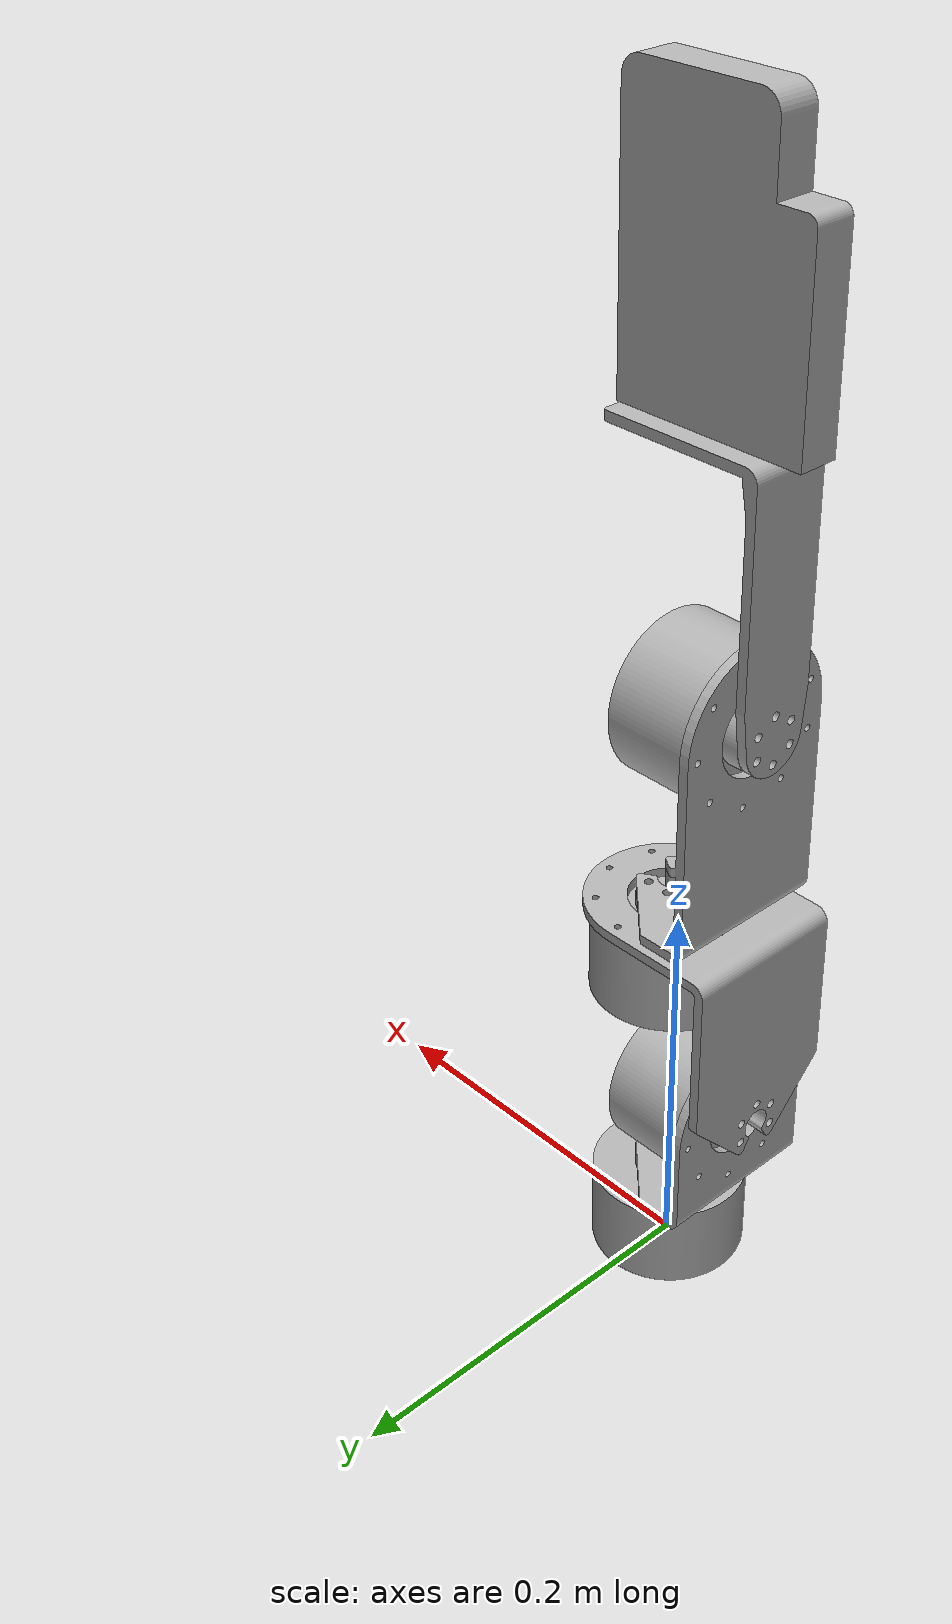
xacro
<?xml version="1.0"?>
<robot xmlns:xacro="http://www.ros.org/wiki/xacro" name="guardian">
    <xacro:arg name="initial_positions_file" default="initial_positions.yaml" />

    <!-- Import guardian urdf file -->
    <xacro:include filename="$(find guardian_urdf)/urdf/arm.urdf" />

    <!-- Import control_xacro -->
    <xacro:include filename="guardian.ros2_control.xacro" />

    <xacro:guardian_ros2_control name="FakeSystem" initial_positions_file="$(arg initial_positions_file)"/>

</robot>

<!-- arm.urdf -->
<robot name="guardian" xmlns:xacro="http://www.ros.org/wiki/xacro">
    <gazebo>
        <plugin filename="libgazebo_ros_control.so" name="ros_control">
        </plugin>
    </gazebo>

    <link name="base_link" />
    <joint name="shoulder_fixed_joint" type="fixed">
        <parent link="base_link" />
        <child link="shoulder_1_link" />
        <origin rpy="0.0 0.0 0.0" xyz="0.0 0.0 0.02275" />
        <axis xyz="0 0 1" />
    </joint>
    <link name="shoulder_1_link">
        <visual>
            <geometry>
                <mesh filename="package://guardian_urdf/visual/ROBSTRIDE02.stl" />
            </geometry>
            <material name="LightGrey">
                <color rgba="0.7 0.7 0.7 1.0" />
            </material>
        </visual>
        <collision>
            <geometry>
                <mesh filename="package://guardian_urdf/visual/ROBSTRIDE02.stl" />
            </geometry>
        </collision>
        <inertial>
            <mass value="0.4" />
            <origin rpy="0 0 0" xyz="0.0 0.0 0.0" />
            <inertia ixx="0.00022306458" ixy="0.0" ixz="0.0"
                     iyx="0.0" iyy="0.00022306458" iyz="0.0"
                     izx="0.0" izy="0.0" izz="0.0003081125" />
        </inertial>
    </link>

    <joint name="bracket_arm_a_joint" type="revolute">
        <parent link="shoulder_1_link" />
        <child link="bracket-arm-a" />
        <origin rpy="0.0 -1.57079632679 0.0" xyz="0.0 0.0 0.03775" />
        <axis xyz="1 0 0" />
        <limit effort="150.0" lower="-6.2831853" upper="6.2831853" velocity="3.15" />
        <dynamics damping="0.0" friction="0.0" />
    </joint>
    <link name="bracket-arm-a">
        <visual>
            <geometry>
                <mesh filename="package://guardian_urdf/visual/0001.STL" />
            </geometry>
            <material name="LightGrey">
                <color rgba="0.7 0.7 0.7 1.0" />
            </material>
        </visual>
        <collision>
            <geometry>
                <mesh filename="package://guardian_urdf/visual/0001.STL" />
            </geometry>
        </collision>
        <inertial>
            <mass value="0.13145" />
            <origin rpy="0 0 0" xyz="0.01887 0.0 0.03071" />
            <inertia ixx="0.00023028057" ixy="0.0" ixz="0.00011378533"
                     iyx="0.0" iyy="0.00031638789" iyz="0.0"
                     izx="0.00011378533" izy="0.0" izz="0.00022896052" />
        </inertial>
    </link>

    <joint name="shoulder2_fixed_joint" type="fixed">
        <parent link="bracket-arm-a" />
        <child link="shoulder_2_link" />
        <origin rpy="0.0 0.0 0.0" xyz="0.047 0.0 0.01725" />
        <axis xyz="0 0 1" />
        <limit effort="150.0" lower="-6.2831853" upper="6.2831853" velocity="3.15" />
        <dynamics damping="0.0" friction="0.0" />
    </joint>
    <link name="shoulder_2_link">
        <visual>
            <geometry>
                <mesh filename="package://guardian_urdf/visual/ROBSTRIDE02.stl" />
            </geometry>
            <material name="LightGrey">
                <color rgba="0.7 0.7 0.7 1.0" />
            </material>
        </visual>
        <collision>
            <geometry>
                <mesh filename="package://guardian_urdf/visual/ROBSTRIDE02.stl" />
            </geometry>
        </collision>
        <inertial>
            <mass value="0.4" />
            <origin rpy="0 0 0" xyz="0.0 0.0 0.0" />
            <inertia ixx="0.00022306458" ixy="0.0" ixz="0.0"
                     iyx="0.0" iyy="0.00022306458" iyz="0.0"
                     izx="0.0" izy="0.0" izz="0.0003081125" />
        </inertial>
    </link>

    <joint name="bracket_arm_b_joint" type="revolute">
        <parent link="shoulder_2_link" />
        <child link="bracket-arm-b" />
        <origin rpy="0.0 1.570796 0.0" xyz="0.0 0.0 0.03275" />
        <axis xyz="1 0 0" />
        <limit effort="150.0" lower="-6.2831853" upper="6.2831853" velocity="3.15" />
        <dynamics damping="0.0" friction="0.0" />
    </joint>
    <link name="bracket-arm-b">
        <visual>
            <geometry>
                <mesh filename="package://guardian_urdf/visual/0002.STL" />
            </geometry>
            <material name="LightGrey">
                <color rgba="0.7 0.7 0.7 1.0" />
            </material>
        </visual>
        <collision>
            <geometry>
                <mesh filename="package://guardian_urdf/visual/0002.STL" />
            </geometry>
        </collision>
        <inertial>
            <mass value="0.20776" />
            <origin rpy="0 0 0" xyz="0.01472 0.0 0.06777" />
            <inertia ixx="0.00135916756" ixy="0.0" ixz="0.0003201893"
                     iyx="0.0" iyy="0.00144076269" iyz="0.0"
                     izx="0.0003201893" izy="0.0" izz="0.000316341" />
        </inertial>
    </link>

    <joint name="shoulder3_fixed_joint" type="fixed">
        <parent link="bracket-arm-b" />
        <child link="shoulder_3_link" />
        <origin rpy="0.0 0.0 0.0" xyz="0.054 0.0 0.07725" />
        <axis xyz="0 0 1" />
        <limit effort="150.0" lower="-6.2831853" upper="6.2831853" velocity="3.15" />
        <dynamics damping="0.0" friction="0.0" />
    </joint>
    <link name="shoulder_3_link">
        <visual>
            <geometry>
                <mesh filename="package://guardian_urdf/visual/ROBSTRIDE02.stl" />
            </geometry>
            <material name="LightGrey">
                <color rgba="0.7 0.7 0.7 1.0" />
            </material>
        </visual>
        <collision>
            <geometry>
                <mesh filename="package://guardian_urdf/visual/ROBSTRIDE02.stl" />
            </geometry>
        </collision>
        <inertial>
            <mass value="0.4" />
            <origin rpy="0 0 0" xyz="0.0 0.0 0.0" />
            <inertia ixx="0.00022306458" ixy="0.0" ixz="0.0"
                     iyx="0.0" iyy="0.00022306458" iyz="0.0"
                     izx="0.0" izy="0.0" izz="0.0003081125" />
        </inertial>
    </link>

    <joint name="bracket_arm_c_joint" type="revolute">
        <parent link="shoulder_3_link" />
        <child link="bracket-arm-c-spacer" />
        <origin rpy="0.0 -1.570796 0.0" xyz="0.0 0.0 0.02225" />
        <axis xyz="1 0 0" />
        <limit effort="150.0" lower="-6.2831853" upper="6.2831853" velocity="3.15" />
        <dynamics damping="0.0" friction="0.0" />
    </joint>

    <link name="bracket-arm-c-spacer">
        <visual>
            <geometry>
                <mesh filename="package://guardian_urdf/visual/1002.STL" />
            </geometry>
            <material name="LightGrey">
                <color rgba="0.7 0.7 0.7 1.0" />
            </material>
        </visual>
        <collision>
            <geometry>
                <mesh filename="package://guardian_urdf/visual/1002.STL" />
            </geometry>
        </collision>
        <inertial>
            <mass value="0.20776" />
            <origin rpy="0 0 0" xyz="0.01472 0.0 0.06777" />
            <inertia ixx="0.00135916756" ixy="0.0" ixz="0.0003201893"
                     iyx="0.0" iyy="0.00144076269" iyz="0.0"
                     izx="0.0003201893" izy="0.0" izz="0.00031634191" />
        </inertial>
    </link>

    <joint name="bracket_arm_c_fixed_joint" type="fixed">
        <parent link="bracket-arm-c-spacer" />
        <child link="bracket-arm-c" />
        <origin rpy="0.0 0.0 0.0" xyz="0.015 0.0 0.0" />
        <axis xyz="1 0 0" />
        <limit effort="150.0" lower="-6.2831853" upper="6.2831853" velocity="3.15" />
        <dynamics damping="0.0" friction="0.0" />
    </joint>

    <link name="bracket-arm-c">
        <visual>
            <geometry>
                <mesh filename="package://guardian_urdf/visual/0003.STL" />
            </geometry>
            <material name="LightGrey">
                <color rgba="0.7 0.7 0.7 1.0" />
            </material>
        </visual>
        <collision>
            <geometry>
                <mesh filename="package://guardian_urdf/visual/0003.STL" />
            </geometry>
        </collision>
        <inertial>
            <mass value="0.19182" />
            <origin rpy="0 0 0" xyz="0.0477 0.0 0.03442" />
            <inertia ixx="0.00037579457" ixy="0.0" ixz="0.00034067062"
                     iyx="0.0" iyy="0.00097101412" iyz="0.0"
                     izx="0.00034067062" izy="0.0" izz="0.00081077184" />
        </inertial>
    </link>

    <joint name="shoulder4_fixed_joint" type="fixed">
        <parent link="bracket-arm-c" />
        <child link="shoulder_4_link" />
        <origin rpy="0.0 0.0 0.0" xyz="0.1 0.0 0.01725" />
        <axis xyz="0 0 1" />
        <limit effort="150.0" lower="-6.2831853" upper="6.2831853" velocity="3.15" />
        <dynamics damping="0.0" friction="0.0" />
    </joint>
    <link name="shoulder_4_link">
        <visual>
            <geometry>
                <mesh filename="package://guardian_urdf/visual/ROBSTRIDE02.stl" />
            </geometry>
            <material name="LightGrey">
                <color rgba="0.7 0.7 0.7 1.0" />
            </material>
        </visual>
        <collision>
            <geometry>
                <mesh filename="package://guardian_urdf/visual/ROBSTRIDE02.stl" />
            </geometry>
        </collision>
        <inertial>
            <mass value="0.4" />
            <origin rpy="0 0 0" xyz="0.0 0.0 0.0" />
            <inertia ixx="0.00022306458" ixy="0.0" ixz="0.0"
                     iyx="0.0" iyy="0.00022306458" iyz="0.0"
                     izx="0.0" izy="0.0" izz="0.0003081125" />
        </inertial>
    </link>

    <joint name="bracket_arm_d_joint" type="revolute">
        <parent link="shoulder_4_link" />
        <child link="bracket-arm-d-spacer" />
        <origin rpy="0.0 -1.570796 0.0" xyz="0.0 0.0 0.02275" />
        <axis xyz="1 0 0" />
        <limit effort="150.0" lower="-6.2831853" upper="6.2831853" velocity="3.15" />
        <dynamics damping="0.0" friction="0.0" />
    </joint>
    <link name="bracket-arm-d-spacer">
        <visual>
            <geometry>
                <mesh filename="package://guardian_urdf/visual/1003.STL" />
            </geometry>
            <material name="LightGrey">
                <color rgba="0.7 0.7 0.7 1.0" />
            </material>
        </visual>
        <collision>
            <geometry>
                <mesh filename="package://guardian_urdf/visual/1003.STL" />
            </geometry>
        </collision>
        <inertial>
            <mass value="0.20776" />
            <origin rpy="0 0 0" xyz="0.01472 0.0 0.06777" />
            <inertia ixx="0.00135916756" ixy="0.0" ixz="0.0003201893"
                     iyx="0.0" iyy="0.00144076269" iyz="0.0"
                     izx="0.0003201893" izy="0.0" izz="0.00031634191" />
        </inertial>
    </link>

    <joint name="bracket_arm_d_fixed_joint" type="fixed">
        <parent link="bracket-arm-d-spacer" />
        <child link="bracket-arm-d" />
        <origin rpy="0.0 3.141592 0.0" xyz="0.01 0.0 0.0" />
        <axis xyz="1 0 0" />
        <limit effort="150.0" lower="-6.2831853" upper="6.2831853" velocity="3.15" />
        <dynamics damping="0.0" friction="0.0" />
    </joint>
    <link name="bracket-arm-d">
        <visual>
            <geometry>
                <mesh filename="package://guardian_urdf/visual/0004.STL" />
            </geometry>
            <material name="LightGrey">
                <color rgba="0.7 0.7 0.7 1.0" />
            </material>
        </visual>
        <collision>
            <geometry>
                <mesh filename="package://guardian_urdf/visual/0004.STL" />
            </geometry>
        </collision>
        <inertial>
            <mass value="1.11931" />
            <origin rpy="0 0 0" xyz="0.03603 0.0 0.18260" />
            <inertia ixx="0.04049963402" ixy="0.00000000389" ixz="0.00798063223"
                     iyx="0.00000000389" iyy="0.04280276251" iyz="0.00000000257"
                     izx="0.00798063223" izy="0.00000000257" izz="0.00247814889" />
        </inertial>
    </link>

    <joint name="hand_fixed_joint" type="fixed">
        <parent link="bracket-arm-d" />
        <child link="arm_hand" />
        <origin rpy="-1.570796 0.0 0.0" xyz="0.042 0.0 0.2" />
        <axis xyz="0 0 1" />
        <limit effort="150.0" lower="-6.2831853" upper="6.2831853" velocity="3.15" />
        <dynamics damping="0.0" friction="0.0" />
    </joint>
    <link name="arm_hand">
        <visual>
            <geometry>
                <mesh filename="package://guardian_urdf/visual/0005.STL" />
            </geometry>
            <material name="LightGrey">
                <color rgba="0.7 0.7 0.7 1.0" />
            </material>
        </visual>
        <collision>
            <geometry>
                <mesh filename="package://guardian_urdf/visual/0005.STL" />
            </geometry>
        </collision>
        <inertial>
            <mass value="0.162" />
            <origin rpy="0 0 0" xyz="0.03673 0.0 0.1844" />
            <inertia ixx="0.0059536011" ixy="0.00000000057" ixz="0.0011790485"
                     iyx="0.00000000057" iyy="0.00629436576" iyz="0.00000000038"
                     izx="0.0011790485" izy="0.00000000038" izz="0.00036641871" />
        </inertial>
    </link>

    <!-- nothing to do here at the moment -->
    <link name="world" />
    <joint name="world_joint" type="fixed">
        <parent link="world" />
        <child link="base_link" />
        <origin rpy="0.0 0.0 0.0" xyz="0.0 0.0 0.0" />
    </joint>
</robot>
